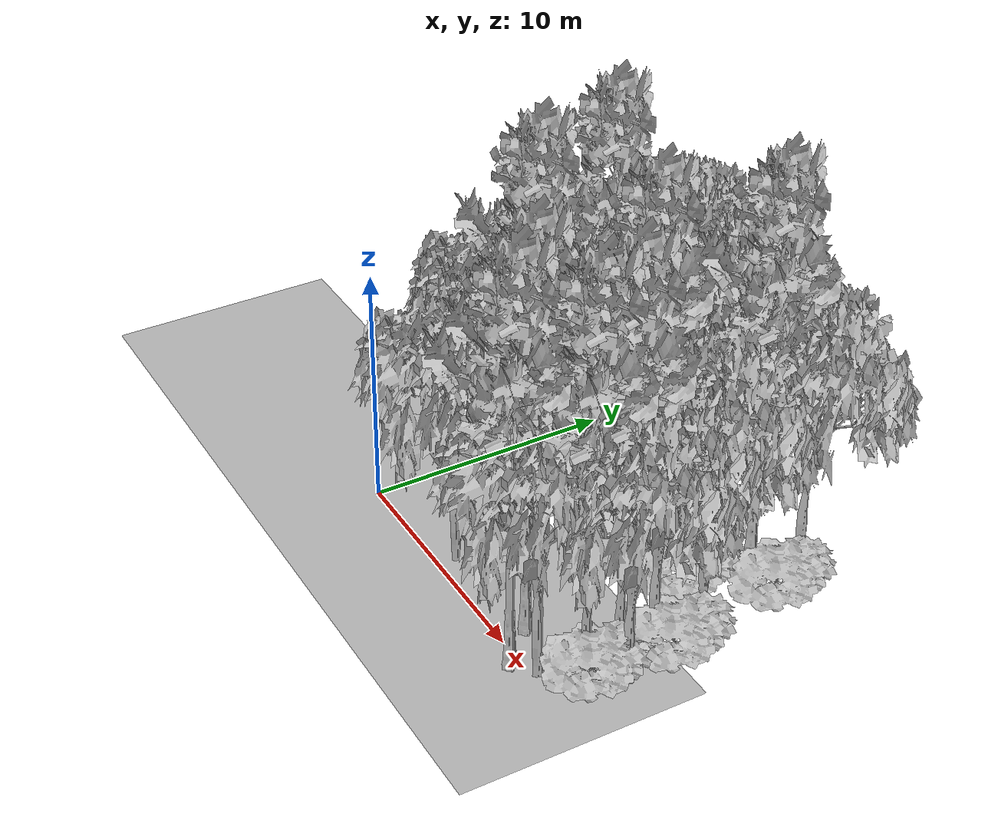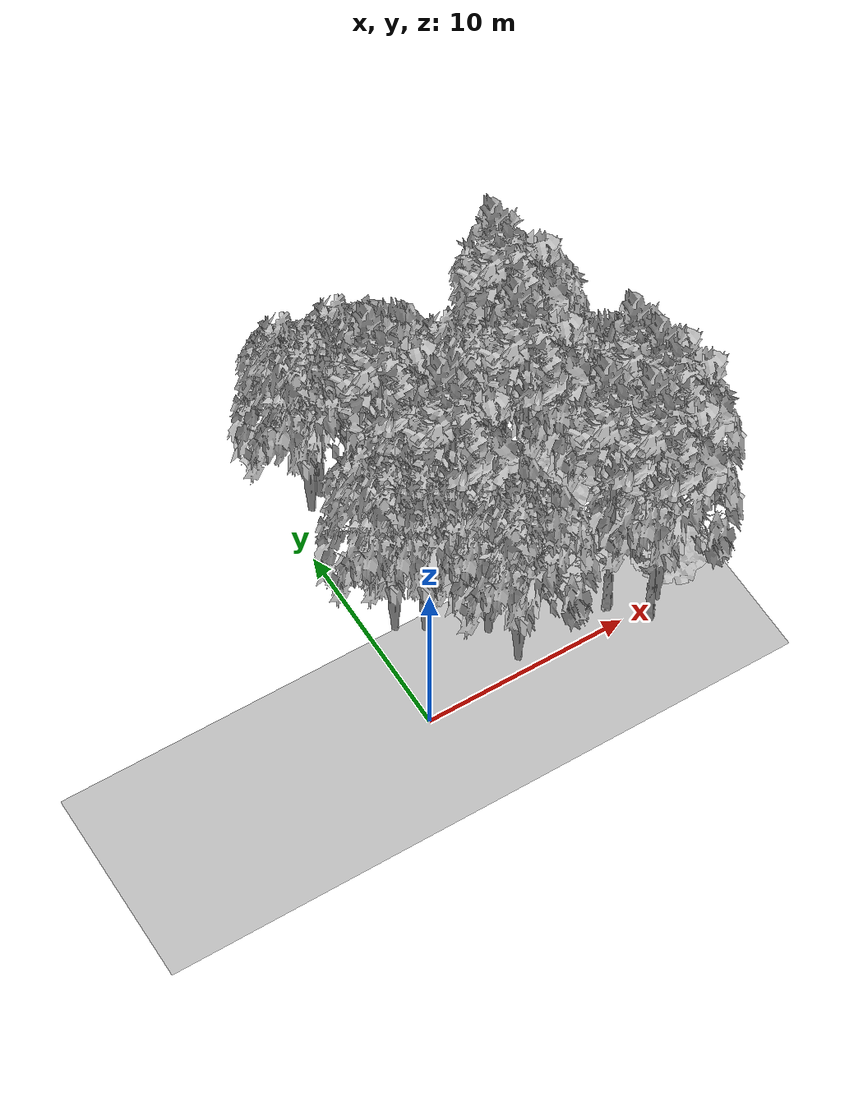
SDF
<sdf version="1.7">
 <world name="default">
  <model name="ground_plane">
   <static>1</static>
   <link name="link">
    <collision name="collision">
     <pose>-50 0 0 0 -0 0</pose>
     <geometry><plane><normal>0 0 1</normal><size>100 100</size></plane></geometry>
     <surface><contact><ode><min_depth>0.01</min_depth><max_vel>0</max_vel></ode></contact></surface>
    </collision>
    <visual name="grass">
     <cast_shadows>0</cast_shadows>
     <geometry>
      <mesh>
       <scale>0.5814285714285714 0.18142857142857144 0.1</scale>
       <uri>file://grass_plane/meshes/grass_plane.dae</uri>
      </mesh>
     </geometry>
    </visual>
   </link>
  </model>
  <model name="Tree 0">
   <static>1</static>
   <pose>4.5045631408654145 12.51372456393841 0 1.57079 -0 0</pose>
   <link name="link">
    <collision name="collision">
     <geometry><mesh><scale>3.5 5 3.5</scale><uri>model://tree_2/meshes/tree_2.obj</uri></mesh></geometry>
    </collision>
    <visual name="visual">
     <geometry><mesh><scale>3.5 5 3.5</scale><uri>model://tree_2/meshes/tree_2.obj</uri></mesh></geometry>
    </visual>
   </link>
  </model>
  <model name="Tree 6">
   <static>1</static>
   <pose>4.058021283641878 4.577086738715732 0 1.57079 -0 0</pose>
   <link name="link">
    <collision name="collision">
     <geometry><mesh><scale>3.5 5 3.5</scale><uri>model://tree_9/meshes/tree_9.obj</uri></mesh></geometry>
    </collision>
    <visual name="visual">
     <geometry><mesh><scale>3.5 5 3.5</scale><uri>model://tree_9/meshes/tree_9.obj</uri></mesh></geometry>
    </visual>
   </link>
  </model>
  <model name="Tree 11">
   <static>1</static>
   <pose>12.547425624584434 4.673868664163017 0 1.57079 -0 0</pose>
   <link name="link">
    <collision name="collision">
     <geometry><mesh><scale>3.5 5 3.5</scale><uri>model://tree_2/meshes/tree_2.obj</uri></mesh></geometry>
    </collision>
    <visual name="visual">
     <geometry><mesh><scale>3.5 5 3.5</scale><uri>model://tree_2/meshes/tree_2.obj</uri></mesh></geometry>
    </visual>
   </link>
  </model>
  <model name="Tree 39">
   <static>1</static>
   <pose>12.130414202858248 7.068782585921188 0 1.57079 -0 0</pose>
   <link name="link">
    <collision name="collision">
     <geometry><mesh><scale>3.5 5 3.5</scale><uri>model://tree_2/meshes/tree_2.obj</uri></mesh></geometry>
    </collision>
    <visual name="visual">
     <geometry><mesh><scale>3.5 5 3.5</scale><uri>model://tree_2/meshes/tree_2.obj</uri></mesh></geometry>
    </visual>
   </link>
  </model>
  <model name="Tree 42">
   <static>1</static>
   <pose>1.2572957310570416 12.419344916929724 0 1.57079 -0 0</pose>
   <link name="link">
    <collision name="collision">
     <geometry><mesh><scale>3.5 5 3.5</scale><uri>model://tree_2/meshes/tree_2.obj</uri></mesh></geometry>
    </collision>
    <visual name="visual">
     <geometry><mesh><scale>3.5 5 3.5</scale><uri>model://tree_2/meshes/tree_2.obj</uri></mesh></geometry>
    </visual>
   </link>
  </model>
  <model name="Tree 43">
   <static>1</static>
   <pose>13.279081374056148 1.8155580170681418 0 1.57079 -0 0</pose>
   <link name="link">
    <collision name="collision">
     <geometry><mesh><scale>4 2.5 4</scale><uri>model://tree_1/meshes/tree_1.obj</uri></mesh></geometry>
    </collision>
    <visual name="visual">
     <geometry><mesh><scale>4 2.5 4</scale><uri>model://tree_1/meshes/tree_1.obj</uri></mesh></geometry>
    </visual>
   </link>
  </model>
  <model name="Tree 53">
   <static>1</static>
   <pose>11.718328504641725 11.707628538014607 0 1.57079 -0 0</pose>
   <link name="link">
    <collision name="collision">
     <geometry><mesh><scale>3.5 5 3.5</scale><uri>model://tree_2/meshes/tree_2.obj</uri></mesh></geometry>
    </collision>
    <visual name="visual">
     <geometry><mesh><scale>3.5 5 3.5</scale><uri>model://tree_2/meshes/tree_2.obj</uri></mesh></geometry>
    </visual>
   </link>
  </model>
  <model name="Tree 64">
   <static>1</static>
   <pose>13.7926370134197 2.808992296212601 0 1.57079 -0 0</pose>
   <link name="link">
    <collision name="collision">
     <geometry><mesh><scale>3.5 5 3.5</scale><uri>model://tree_2/meshes/tree_2.obj</uri></mesh></geometry>
    </collision>
    <visual name="visual">
     <geometry><mesh><scale>3.5 5 3.5</scale><uri>model://tree_2/meshes/tree_2.obj</uri></mesh></geometry>
    </visual>
   </link>
  </model>
  <model name="Tree 68">
   <static>1</static>
   <pose>13.43862068053361 5.072594828066631 0 1.57079 -0 0</pose>
   <link name="link">
    <collision name="collision">
     <geometry><mesh><scale>4 2.5 4</scale><uri>model://tree_1/meshes/tree_1.obj</uri></mesh></geometry>
    </collision>
    <visual name="visual">
     <geometry><mesh><scale>4 2.5 4</scale><uri>model://tree_1/meshes/tree_1.obj</uri></mesh></geometry>
    </visual>
   </link>
  </model>
  <model name="Tree 92">
   <static>1</static>
   <pose>1.9694201209429636 12.932701903310555 0 1.57079 -0 0</pose>
   <link name="link">
    <collision name="collision">
     <geometry><mesh><scale>3.5 5 3.5</scale><uri>model://tree_2/meshes/tree_2.obj</uri></mesh></geometry>
    </collision>
    <visual name="visual">
     <geometry><mesh><scale>3.5 5 3.5</scale><uri>model://tree_2/meshes/tree_2.obj</uri></mesh></geometry>
    </visual>
   </link>
  </model>
  <model name="Tree 94">
   <static>1</static>
   <pose>12.965289810982362 1.5972838950579806 0 1.57079 -0 0</pose>
   <link name="link">
    <collision name="collision">
     <geometry><mesh><scale>3.5 5 3.5</scale><uri>model://tree_9/meshes/tree_9.obj</uri></mesh></geometry>
    </collision>
    <visual name="visual">
     <geometry><mesh><scale>3.5 5 3.5</scale><uri>model://tree_9/meshes/tree_9.obj</uri></mesh></geometry>
    </visual>
   </link>
  </model>
  <model name="Tree 98">
   <static>1</static>
   <pose>1.1431778787914197 4.947950724947649 0 1.57079 -0 0</pose>
   <link name="link">
    <collision name="collision">
     <geometry><mesh><scale>3.5 5 3.5</scale><uri>model://tree_2/meshes/tree_2.obj</uri></mesh></geometry>
    </collision>
    <visual name="visual">
     <geometry><mesh><scale>3.5 5 3.5</scale><uri>model://tree_2/meshes/tree_2.obj</uri></mesh></geometry>
    </visual>
   </link>
  </model>
  <model name="Tree 106">
   <static>1</static>
   <pose>9.866320473152427 0.9718664826395216 0 1.57079 -0 0</pose>
   <link name="link">
    <collision name="collision">
     <geometry><mesh><scale>3.5 5 3.5</scale><uri>model://tree_9/meshes/tree_9.obj</uri></mesh></geometry>
    </collision>
    <visual name="visual">
     <geometry><mesh><scale>3.5 5 3.5</scale><uri>model://tree_9/meshes/tree_9.obj</uri></mesh></geometry>
    </visual>
   </link>
  </model>
  <model name="Tree 119">
   <static>1</static>
   <pose>3.809220082471086 5.974754255131852 0 1.57079 -0 0</pose>
   <link name="link">
    <collision name="collision">
     <geometry><mesh><scale>3.5 5 3.5</scale><uri>model://tree_2/meshes/tree_2.obj</uri></mesh></geometry>
    </collision>
    <visual name="visual">
     <geometry><mesh><scale>3.5 5 3.5</scale><uri>model://tree_2/meshes/tree_2.obj</uri></mesh></geometry>
    </visual>
   </link>
  </model>
  <model name="Tree 137">
   <static>1</static>
   <pose>8.114881649553702 9.276323515649771 0 1.57079 -0 0</pose>
   <link name="link">
    <collision name="collision">
     <geometry><mesh><scale>3.5 5 3.5</scale><uri>model://tree_2/meshes/tree_2.obj</uri></mesh></geometry>
    </collision>
    <visual name="visual">
     <geometry><mesh><scale>3.5 5 3.5</scale><uri>model://tree_2/meshes/tree_2.obj</uri></mesh></geometry>
    </visual>
   </link>
  </model>
  <model name="Tree 150">
   <static>1</static>
   <pose>11.199272322748655 -0.4451558183324451 0 1.57079 -0 0</pose>
   <link name="link">
    <collision name="collision">
     <geometry><mesh><scale>3.5 5 3.5</scale><uri>model://tree_9/meshes/tree_9.obj</uri></mesh></geometry>
    </collision>
    <visual name="visual">
     <geometry><mesh><scale>3.5 5 3.5</scale><uri>model://tree_9/meshes/tree_9.obj</uri></mesh></geometry>
    </visual>
   </link>
  </model>
  <model name="Tree 167">
   <static>1</static>
   <pose>8.915420479738117 6.432963837280809 0 1.57079 -0 0</pose>
   <link name="link">
    <collision name="collision">
     <geometry><mesh><scale>3.5 5 3.5</scale><uri>model://tree_9/meshes/tree_9.obj</uri></mesh></geometry>
    </collision>
    <visual name="visual">
     <geometry><mesh><scale>3.5 5 3.5</scale><uri>model://tree_9/meshes/tree_9.obj</uri></mesh></geometry>
    </visual>
   </link>
  </model>
  <model name="Tree 182">
   <static>1</static>
   <pose>10.37559692447595 10.526071179521889 0 1.57079 -0 0</pose>
   <link name="link">
    <collision name="collision">
     <geometry><mesh><scale>3.5 5 3.5</scale><uri>model://tree_9/meshes/tree_9.obj</uri></mesh></geometry>
    </collision>
    <visual name="visual">
     <geometry><mesh><scale>3.5 5 3.5</scale><uri>model://tree_9/meshes/tree_9.obj</uri></mesh></geometry>
    </visual>
   </link>
  </model>
  <model name="Tree 209">
   <static>1</static>
   <pose>2.30061098755818 4.220769282062147 0 1.57079 -0 0</pose>
   <link name="link">
    <collision name="collision">
     <geometry><mesh><scale>3.5 5 3.5</scale><uri>model://tree_2/meshes/tree_2.obj</uri></mesh></geometry>
    </collision>
    <visual name="visual">
     <geometry><mesh><scale>3.5 5 3.5</scale><uri>model://tree_2/meshes/tree_2.obj</uri></mesh></geometry>
    </visual>
   </link>
  </model>
  <model name="Tree 220">
   <static>1</static>
   <pose>10.526688537780714 7.379900433513743 0 1.57079 -0 0</pose>
   <link name="link">
    <collision name="collision">
     <geometry><mesh><scale>4 2.5 4</scale><uri>model://tree_1/meshes/tree_1.obj</uri></mesh></geometry>
    </collision>
    <visual name="visual">
     <geometry><mesh><scale>4 2.5 4</scale><uri>model://tree_1/meshes/tree_1.obj</uri></mesh></geometry>
    </visual>
   </link>
  </model>
  <model name="Tree 227">
   <static>1</static>
   <pose>12.6259893557096 10.107856611807648 0 1.57079 -0 0</pose>
   <link name="link">
    <collision name="collision">
     <geometry><mesh><scale>4 2.5 4</scale><uri>model://tree_1/meshes/tree_1.obj</uri></mesh></geometry>
    </collision>
    <visual name="visual">
     <geometry><mesh><scale>4 2.5 4</scale><uri>model://tree_1/meshes/tree_1.obj</uri></mesh></geometry>
    </visual>
   </link>
  </model>
  <model name="Tree 237">
   <static>1</static>
   <pose>11.930421332970234 0.22198696550584884 0 1.57079 -0 0</pose>
   <link name="link">
    <collision name="collision">
     <geometry><mesh><scale>3.5 5 3.5</scale><uri>model://tree_2/meshes/tree_2.obj</uri></mesh></geometry>
    </collision>
    <visual name="visual">
     <geometry><mesh><scale>3.5 5 3.5</scale><uri>model://tree_2/meshes/tree_2.obj</uri></mesh></geometry>
    </visual>
   </link>
  </model>
  <model name="Tree 251">
   <static>1</static>
   <pose>12.6955963838016 3.1655602136950236 0 1.57079 -0 0</pose>
   <link name="link">
    <collision name="collision">
     <geometry><mesh><scale>3.5 5 3.5</scale><uri>model://tree_9/meshes/tree_9.obj</uri></mesh></geometry>
    </collision>
    <visual name="visual">
     <geometry><mesh><scale>3.5 5 3.5</scale><uri>model://tree_9/meshes/tree_9.obj</uri></mesh></geometry>
    </visual>
   </link>
  </model>
  <model name="Tree 256">
   <static>1</static>
   <pose>4.610027241611817 2.6664945292981628 0 1.57079 -0 0</pose>
   <link name="link">
    <collision name="collision">
     <geometry><mesh><scale>3.5 5 3.5</scale><uri>model://tree_2/meshes/tree_2.obj</uri></mesh></geometry>
    </collision>
    <visual name="visual">
     <geometry><mesh><scale>3.5 5 3.5</scale><uri>model://tree_2/meshes/tree_2.obj</uri></mesh></geometry>
    </visual>
   </link>
  </model>
  <model name="Tree 264">
   <static>1</static>
   <pose>2.870982386709379 8.498558739521734 0 1.57079 -0 0</pose>
   <link name="link">
    <collision name="collision">
     <geometry><mesh><scale>3.5 5 3.5</scale><uri>model://tree_9/meshes/tree_9.obj</uri></mesh></geometry>
    </collision>
    <visual name="visual">
     <geometry><mesh><scale>3.5 5 3.5</scale><uri>model://tree_9/meshes/tree_9.obj</uri></mesh></geometry>
    </visual>
   </link>
  </model>
  <model name="Tree 272">
   <static>1</static>
   <pose>4.966954901859879 0.7616838060652675 0 1.57079 -0 0</pose>
   <link name="link">
    <collision name="collision">
     <geometry><mesh><scale>3.5 5 3.5</scale><uri>model://tree_2/meshes/tree_2.obj</uri></mesh></geometry>
    </collision>
    <visual name="visual">
     <geometry><mesh><scale>3.5 5 3.5</scale><uri>model://tree_2/meshes/tree_2.obj</uri></mesh></geometry>
    </visual>
   </link>
  </model>
 </world>
</sdf>
